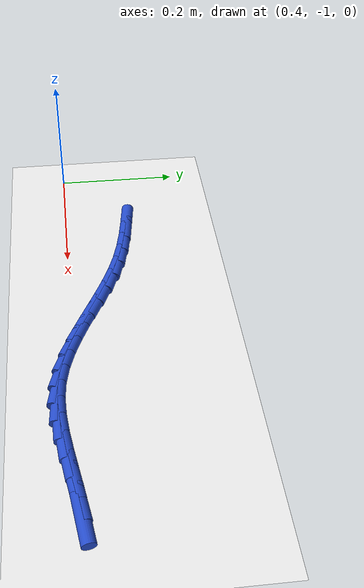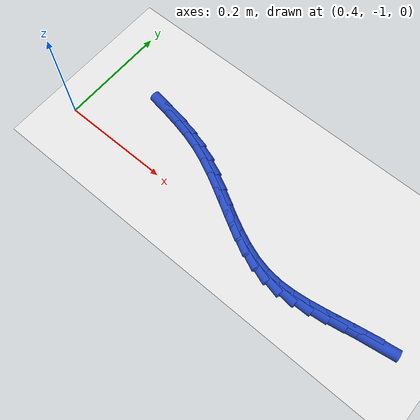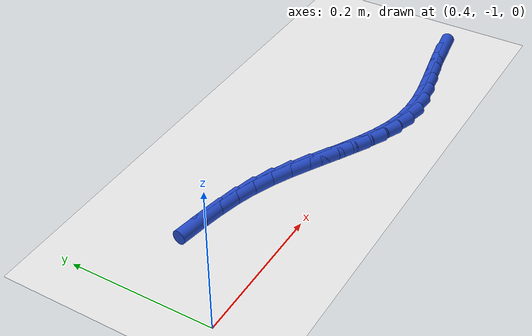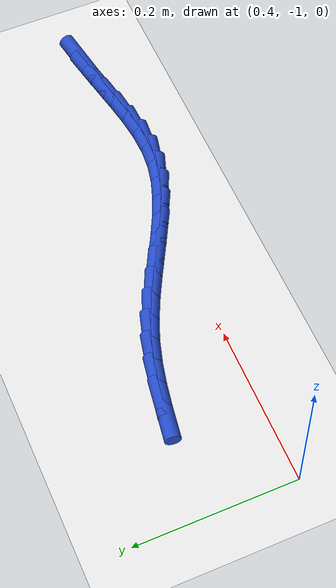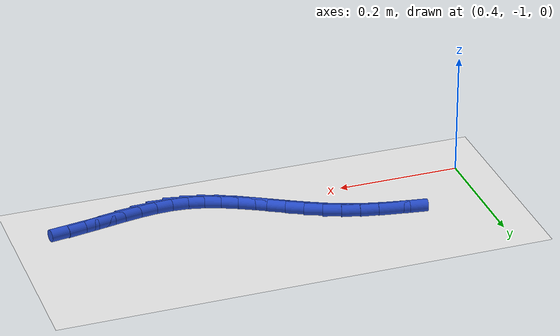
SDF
<sdf version="1.6">
 <world name="default">
  <model name="ground_plane">
   <static>1</static>
   <link name="link">
    <collision name="collision">
     <geometry><plane><normal>0 0 1</normal><size>100 100</size></plane></geometry>
     <surface><friction><ode><mu>100</mu><mu2>50</mu2></ode></friction></surface>
    </collision>
    <visual name="visual">
     <cast_shadows>0</cast_shadows>
     <geometry><plane><normal>0 0 1</normal><size>100 100</size></plane></geometry>
     <material>
      <script><uri>file://media/materials/scripts/gazebo.material</uri><name>Gazebo/WhiteGlow</name></script>
     </material>
    </visual>
   </link>
  </model>
  <model name="line">
   <link name="link_181">
    <pose>1.044055039237723 -0.9983075713436951 0.01 0 1.57 0.158022879099091</pose>
    <collision name="collision">
     <geometry><cylinder><radius>0.01</radius><length>0.08</length></cylinder></geometry>
    </collision>
    <visual name="visual">
     <material>
      <script><name>Gazebo/Blue</name><uri>file://media/materials/scripts/gazebo.material</uri></script>
     </material>
     <geometry><cylinder><radius>0.01</radius><length>0.08</length></cylinder></geometry>
    </visual>
   </link>
   <link name="link_182">
    <pose>1.015448265336589 -1.002866103487225 0.01 0 1.57 0.19027454782778783</pose>
    <collision name="collision">
     <geometry><cylinder><radius>0.01</radius><length>0.08</length></cylinder></geometry>
    </collision>
    <visual name="visual">
     <material>
      <script><name>Gazebo/Blue</name><uri>file://media/materials/scripts/gazebo.material</uri></script>
     </material>
     <geometry><cylinder><radius>0.01</radius><length>0.08</length></cylinder></geometry>
    </visual>
   </link>
   <link name="link_183">
    <pose>0.987037613503694 -1.008338124443665 0.01 0 1.57 0.19486882815776171</pose>
    <collision name="collision">
     <geometry><cylinder><radius>0.01</radius><length>0.08</length></cylinder></geometry>
    </collision>
    <visual name="visual">
     <material>
      <script><name>Gazebo/Blue</name><uri>file://media/materials/scripts/gazebo.material</uri></script>
     </material>
     <geometry><cylinder><radius>0.01</radius><length>0.08</length></cylinder></geometry>
    </visual>
   </link>
   <link name="link_184">
    <pose>0.958891851252654 -1.01389335263285 0.01 0 1.57 0.17118782321446263</pose>
    <collision name="collision">
     <geometry><cylinder><radius>0.01</radius><length>0.08</length></cylinder></geometry>
    </collision>
    <visual name="visual">
     <material>
      <script><name>Gazebo/Blue</name><uri>file://media/materials/scripts/gazebo.material</uri></script>
     </material>
     <geometry><cylinder><radius>0.01</radius><length>0.08</length></cylinder></geometry>
    </visual>
   </link>
   <link name="link_185">
    <pose>0.9310797460970827 -1.0187015064746137 0.01 0 1.57 0.11732931542859466</pose>
    <collision name="collision">
     <geometry><cylinder><radius>0.01</radius><length>0.08</length></cylinder></geometry>
    </collision>
    <visual name="visual">
     <material>
      <script><name>Gazebo/Blue</name><uri>file://media/materials/scripts/gazebo.material</uri></script>
     </material>
     <geometry><cylinder><radius>0.01</radius><length>0.08</length></cylinder></geometry>
    </visual>
   </link>
   <link name="link_186">
    <pose>0.9036700655505969 -1.0219323043887905 0.01 0 1.57 0.030547532327337146</pose>
    <collision name="collision">
     <geometry><cylinder><radius>0.01</radius><length>0.08</length></cylinder></geometry>
    </collision>
    <visual name="visual">
     <material>
      <script><name>Gazebo/Blue</name><uri>file://media/materials/scripts/gazebo.material</uri></script>
     </material>
     <geometry><cylinder><radius>0.01</radius><length>0.08</length></cylinder></geometry>
    </visual>
   </link>
   <link name="link_187">
    <pose>0.8767315771268119 -1.022755464795215 0.01 0 1.57 -0.09103306632893253</pose>
    <collision name="collision">
     <geometry><cylinder><radius>0.01</radius><length>0.08</length></cylinder></geometry>
    </collision>
    <visual name="visual">
     <material>
      <script><name>Gazebo/Blue</name><uri>file://media/materials/scripts/gazebo.material</uri></script>
     </material>
     <geometry><cylinder><radius>0.01</radius><length>0.08</length></cylinder></geometry>
    </visual>
   </link>
   <link name="link_188">
    <pose>0.8503323158156079 -1.0203455985393428 0.01 0 1.57 -0.2269568800420369</pose>
    <collision name="collision">
     <geometry><cylinder><radius>0.01</radius><length>0.08</length></cylinder></geometry>
    </collision>
    <visual name="visual">
     <material>
      <script><name>Gazebo/Blue</name><uri>file://media/materials/scripts/gazebo.material</uri></script>
     </material>
     <geometry><cylinder><radius>0.01</radius><length>0.08</length></cylinder></geometry>
    </visual>
   </link>
   <link name="link_189">
    <pose>0.8244662205148557 -1.0143721941096724 0.01 0 1.57 -0.33800622424436233</pose>
    <collision name="collision">
     <geometry><cylinder><radius>0.01</radius><length>0.08</length></cylinder></geometry>
    </collision>
    <visual name="visual">
     <material>
      <script><name>Gazebo/Blue</name><uri>file://media/materials/scripts/gazebo.material</uri></script>
     </material>
     <geometry><cylinder><radius>0.01</radius><length>0.08</length></cylinder></geometry>
    </visual>
   </link>
   <link name="link_190">
    <pose>0.7989905485181081 -1.0054176176965683 0.01 0 1.57 -0.41941264267371103</pose>
    <collision name="collision">
     <geometry><cylinder><radius>0.01</radius><length>0.08</length></cylinder></geometry>
    </collision>
    <visual name="visual">
     <material>
      <script><name>Gazebo/Blue</name><uri>file://media/materials/scripts/gazebo.material</uri></script>
     </material>
     <geometry><cylinder><radius>0.01</radius><length>0.08</length></cylinder></geometry>
    </visual>
   </link>
   <link name="link_191">
    <pose>0.7737478166167363 -0.9941626852841546 0.01 0 1.57 -0.4728496722453895</pose>
    <collision name="collision">
     <geometry><cylinder><radius>0.01</radius><length>0.08</length></cylinder></geometry>
    </collision>
    <visual name="visual">
     <material>
      <script><name>Gazebo/Blue</name><uri>file://media/materials/scripts/gazebo.material</uri></script>
     </material>
     <geometry><cylinder><radius>0.01</radius><length>0.08</length></cylinder></geometry>
    </visual>
   </link>
   <link name="link_192">
    <pose>0.7485805416021113 -0.9812882128565543 0.01 0 1.57 -0.5005927727388071</pose>
    <collision name="collision">
     <geometry><cylinder><radius>0.01</radius><length>0.08</length></cylinder></geometry>
    </collision>
    <visual name="visual">
     <material>
      <script><name>Gazebo/Blue</name><uri>file://media/materials/scripts/gazebo.material</uri></script>
     </material>
     <geometry><cylinder><radius>0.01</radius><length>0.08</length></cylinder></geometry>
    </visual>
   </link>
   <link name="link_193">
    <pose>0.723331240265605 -0.9674750163978908 0.01 0 1.57 -0.5044159391714519</pose>
    <collision name="collision">
     <geometry><cylinder><radius>0.01</radius><length>0.08</length></cylinder></geometry>
    </collision>
    <visual name="visual">
     <material>
      <script><name>Gazebo/Blue</name><uri>file://media/materials/scripts/gazebo.material</uri></script>
     </material>
     <geometry><cylinder><radius>0.01</radius><length>0.08</length></cylinder></geometry>
    </visual>
   </link>
   <link name="link_194">
    <pose>0.6978424293985889 -0.9534039118922881 0.01 0 1.57 -0.4852063863748453</pose>
    <collision name="collision">
     <geometry><cylinder><radius>0.01</radius><length>0.08</length></cylinder></geometry>
    </collision>
    <visual name="visual">
     <material>
      <script><name>Gazebo/Blue</name><uri>file://media/materials/scripts/gazebo.material</uri></script>
     </material>
     <geometry><cylinder><radius>0.01</radius><length>0.08</length></cylinder></geometry>
    </visual>
   </link>
   <link name="link_195">
    <pose>0.6719566257924341 -0.9397557153238695 0.01 0 1.57 -0.442995847657361</pose>
    <collision name="collision">
     <geometry><cylinder><radius>0.01</radius><length>0.08</length></cylinder></geometry>
    </collision>
    <visual name="visual">
     <material>
      <script><name>Gazebo/Blue</name><uri>file://media/materials/scripts/gazebo.material</uri></script>
     </material>
     <geometry><cylinder><radius>0.01</radius><length>0.08</length></cylinder></geometry>
    </visual>
   </link>
   <link name="link_196">
    <pose>0.6455163462385114 -0.9272112426767578 0.01 0 1.57 -0.37730038698525487</pose>
    <collision name="collision">
     <geometry><cylinder><radius>0.01</radius><length>0.08</length></cylinder></geometry>
    </collision>
    <visual name="visual">
     <material>
      <script><name>Gazebo/Blue</name><uri>file://media/materials/scripts/gazebo.material</uri></script>
     </material>
     <geometry><cylinder><radius>0.01</radius><length>0.08</length></cylinder></geometry>
    </visual>
   </link>
   <link name="link_197">
    <pose>0.618364142725894 -0.9164512099371142 0.01 0 1.57 -0.2970071250187751</pose>
    <collision name="collision">
     <geometry><cylinder><radius>0.01</radius><length>0.08</length></cylinder></geometry>
    </collision>
    <visual name="visual">
     <material>
      <script><name>Gazebo/Blue</name><uri>file://media/materials/scripts/gazebo.material</uri></script>
     </material>
     <geometry><cylinder><radius>0.01</radius><length>0.08</length></cylinder></geometry>
    </visual>
   </link>
   <link name="link_198">
    <pose>0.5904319851840344 -0.9079022934355907 0.01 0 1.57 -0.23137705149835264</pose>
    <collision name="collision">
     <geometry><cylinder><radius>0.01</radius><length>0.08</length></cylinder></geometry>
    </collision>
    <visual name="visual">
     <material>
      <script><name>Gazebo/Blue</name><uri>file://media/materials/scripts/gazebo.material</uri></script>
     </material>
     <geometry><cylinder><radius>0.01</radius><length>0.08</length></cylinder></geometry>
    </visual>
   </link>
   <link name="link_199">
    <pose>0.5619344164536818 -0.9011883694748285 0.01 0 1.57 -0.18583811393217017</pose>
    <collision name="collision">
     <geometry><cylinder><radius>0.01</radius><length>0.08</length></cylinder></geometry>
    </collision>
    <visual name="visual">
     <material>
      <script><name>Gazebo/Blue</name><uri>file://media/materials/scripts/gazebo.material</uri></script>
     </material>
     <geometry><cylinder><radius>0.01</radius><length>0.08</length></cylinder></geometry>
    </visual>
   </link>
   <link name="link_200">
    <pose>0.5331416622112523 -0.8957751173745117 0.01 0 1.57 -0.1598753286100373</pose>
    <collision name="collision">
     <geometry><cylinder><radius>0.01</radius><length>0.08</length></cylinder></geometry>
    </collision>
    <visual name="visual">
     <material>
      <script><name>Gazebo/Blue</name><uri>file://media/materials/scripts/gazebo.material</uri></script>
     </material>
     <geometry><cylinder><radius>0.01</radius><length>0.08</length></cylinder></geometry>
    </visual>
   </link>
  </model>
 </world>
</sdf>
